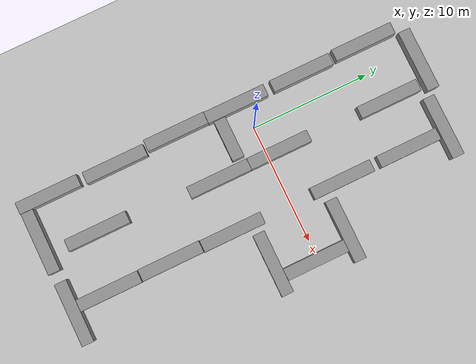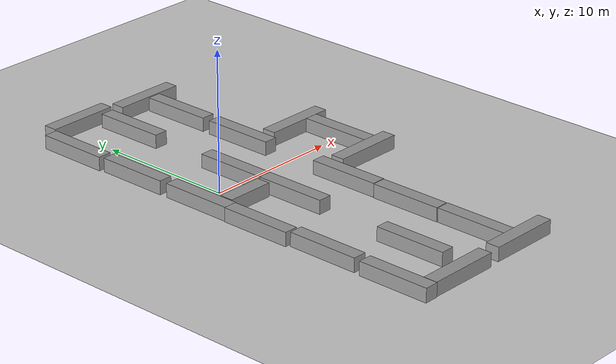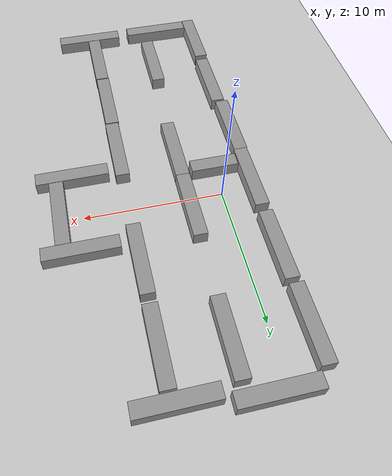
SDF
<sdf version="1.7">
 <world name="default">
  <light name="sun" type="directional">
   <pose>0 0 10 0 -0 0</pose>
   <diffuse>0.8 0.8 0.8 1</diffuse>
   <specular>0.2 0.2 0.2 1</specular>
   <attenuation>
    <range>1000</range>
    <constant>0.9</constant>
    <linear>0.01</linear>
    <quadratic>0.001</quadratic>
   </attenuation>
   <direction>-0.5 0.1 -0.9</direction>
   <spot><inner_angle>0</inner_angle><outer_angle>0</outer_angle><falloff>0</falloff></spot>
  </light>
  <model name="ground_plane">
   <static>1</static>
   <link name="link">
    <collision name="collision">
     <geometry><plane><normal>0 0 1</normal><size>100 100</size></plane></geometry>
     <surface>
      <contact><collide_bitmask>65535</collide_bitmask></contact>
      <friction><ode><mu>100</mu><mu2>50</mu2></ode></friction>
     </surface>
    </collision>
    <visual name="visual">
     <cast_shadows>0</cast_shadows>
     <geometry><plane><normal>0 0 1</normal><size>100 100</size></plane></geometry>
     <material>
      <script><uri>file://media/materials/scripts/gazebo.material</uri><name>Gazebo/Grey</name></script>
     </material>
    </visual>
   </link>
  </model>
  <gravity>0 0 -9.8</gravity>
  <magnetic_field>6e-06 2.3e-05 -4.2e-05</magnetic_field>
  <atmosphere type="adiabatic"/>
  <physics type="ode">
   <max_step_size>0.001</max_step_size>
   <real_time_factor>1</real_time_factor>
   <real_time_update_rate>1000</real_time_update_rate>
  </physics>
  <scene><ambient>0.4 0.4 0.4 1</ambient><background>0.7 0.7 0.7 1</background><shadows>1</shadows></scene>
  <spherical_coordinates>
   <surface_model>EARTH_WGS84</surface_model>
   <latitude_deg>0</latitude_deg>
   <longitude_deg>0</longitude_deg>
   <elevation>0</elevation>
   <heading_deg>0</heading_deg>
  </spherical_coordinates>
  <model name="unit_box">
   <pose>-2.243 -0.530766 0.497392 0.000997 0 2e-05</pose>
   <link name="link">
    <inertial>
     <mass>1</mass>
     <inertia>
      <ixx>0.166667</ixx>
      <ixy>0</ixy>
      <ixz>0</ixz>
      <iyy>0.166667</iyy>
      <iyz>0</iyz>
      <izz>0.166667</izz>
     </inertia>
    </inertial>
    <collision name="collision"><geometry><box><size>1 5.23153 1</size></box></geometry></collision>
    <visual name="visual">
     <geometry><box><size>1 5.23153 1</size></box></geometry>
     <material>
      <script><name>Gazebo/Grey</name><uri>file://media/materials/scripts/gazebo.material</uri></script>
     </material>
    </visual>
   </link>
  </model>
  <model name="unit_box_clone">
   <pose>2.53569 0.952664 0.497392 0.000997 0 2e-05</pose>
   <link name="link">
    <inertial>
     <mass>1</mass>
     <inertia>
      <ixx>0.166667</ixx>
      <ixy>0</ixy>
      <ixz>0</ixz>
      <iyy>0.166667</iyy>
      <iyz>0</iyz>
      <izz>0.166667</izz>
     </inertia>
    </inertial>
    <collision name="collision"><geometry><box><size>1 5.23153 1</size></box></geometry></collision>
    <visual name="visual">
     <geometry><box><size>1 5.23153 1</size></box></geometry>
     <material>
      <script><name>Gazebo/Grey</name><uri>file://media/materials/scripts/gazebo.material</uri></script>
     </material>
    </visual>
   </link>
  </model>
  <model name="unit_box_clone_0">
   <pose>-2.28916 -5.76675 0.497392 -0.000997 0 2.2e-05</pose>
   <link name="link">
    <inertial>
     <mass>1</mass>
     <inertia>
      <ixx>0.166667</ixx>
      <ixy>0</ixy>
      <ixz>0</ixz>
      <iyy>0.166667</iyy>
      <iyz>0</iyz>
      <izz>0.166667</izz>
     </inertia>
    </inertial>
    <collision name="collision"><geometry><box><size>1 5.23153 1</size></box></geometry></collision>
    <visual name="visual">
     <geometry><box><size>1 5.23153 1</size></box></geometry>
     <material>
      <script><name>Gazebo/Grey</name><uri>file://media/materials/scripts/gazebo.material</uri></script>
     </material>
    </visual>
   </link>
  </model>
  <model name="unit_box_clone_1">
   <pose>2.53869 -4.28294 0.497392 -0.000997 0 -2e-05</pose>
   <link name="link">
    <inertial>
     <mass>1</mass>
     <inertia>
      <ixx>0.166667</ixx>
      <ixy>0</ixy>
      <ixz>0</ixz>
      <iyy>0.166667</iyy>
      <iyz>0</iyz>
      <izz>0.166667</izz>
     </inertia>
    </inertial>
    <collision name="collision"><geometry><box><size>1 5.23153 1</size></box></geometry></collision>
    <visual name="visual">
     <geometry><box><size>1 5.23153 1</size></box></geometry>
     <material>
      <script><name>Gazebo/Grey</name><uri>file://media/materials/scripts/gazebo.material</uri></script>
     </material>
    </visual>
   </link>
  </model>
  <model name="unit_box_clone_2">
   <pose>6.76906 -5.14834 0.497392 0.000997 -0 -2e-05</pose>
   <link name="link">
    <inertial>
     <mass>1</mass>
     <inertia>
      <ixx>0.166667</ixx>
      <ixy>0</ixy>
      <ixz>0</ixz>
      <iyy>0.166667</iyy>
      <iyz>0</iyz>
      <izz>0.166667</izz>
     </inertia>
    </inertial>
    <collision name="collision"><geometry><box><size>1 5.23153 1</size></box></geometry></collision>
    <visual name="visual">
     <geometry><box><size>1 5.23153 1</size></box></geometry>
     <material>
      <script><name>Gazebo/Grey</name><uri>file://media/materials/scripts/gazebo.material</uri></script>
     </material>
    </visual>
   </link>
  </model>
  <model name="unit_box_clone_3">
   <pose>6.79657 4.38113 0.497392 0.000997 0 2e-05</pose>
   <link name="link">
    <inertial>
     <mass>1</mass>
     <inertia>
      <ixx>0.166667</ixx>
      <ixy>0</ixy>
      <ixz>0</ixz>
      <iyy>0.166667</iyy>
      <iyz>0</iyz>
      <izz>0.166667</izz>
     </inertia>
    </inertial>
    <collision name="collision"><geometry><box><size>1 5.23153 1</size></box></geometry></collision>
    <visual name="visual">
     <geometry><box><size>1 5.23153 1</size></box></geometry>
     <material>
      <script><name>Gazebo/Grey</name><uri>file://media/materials/scripts/gazebo.material</uri></script>
     </material>
    </visual>
   </link>
  </model>
  <model name="unit_box_clone_4">
   <pose>-2.26327 5.25607 0.497392 0.000997 -0 -2e-05</pose>
   <link name="link">
    <inertial>
     <mass>1</mass>
     <inertia>
      <ixx>0.166667</ixx>
      <ixy>0</ixy>
      <ixz>0</ixz>
      <iyy>0.166667</iyy>
      <iyz>0</iyz>
      <izz>0.166667</izz>
     </inertia>
    </inertial>
    <collision name="collision"><geometry><box><size>1 5.23153 1</size></box></geometry></collision>
    <visual name="visual">
     <geometry><box><size>1 5.23153 1</size></box></geometry>
     <material>
      <script><name>Gazebo/Grey</name><uri>file://media/materials/scripts/gazebo.material</uri></script>
     </material>
    </visual>
   </link>
  </model>
  <model name="unit_box_clone_5">
   <pose>-2.37542 10.8163 0.497392 0.000997 -0 -2e-05</pose>
   <link name="link">
    <inertial>
     <mass>1</mass>
     <inertia>
      <ixx>0.166667</ixx>
      <ixy>0</ixy>
      <ixz>0</ixz>
      <iyy>0.166667</iyy>
      <iyz>0</iyz>
      <izz>0.166667</izz>
     </inertia>
    </inertial>
    <collision name="collision"><geometry><box><size>1 5.23153 1</size></box></geometry></collision>
    <visual name="visual">
     <geometry><box><size>1 5.23153 1</size></box></geometry>
     <material>
      <script><name>Gazebo/Grey</name><uri>file://media/materials/scripts/gazebo.material</uri></script>
     </material>
    </visual>
   </link>
  </model>
  <model name="unit_box_clone_6">
   <pose>2.63756 10.5857 0.497392 -0.000997 0 -2e-05</pose>
   <link name="link">
    <inertial>
     <mass>1</mass>
     <inertia>
      <ixx>0.166667</ixx>
      <ixy>0</ixy>
      <ixz>0</ixz>
      <iyy>0.166667</iyy>
      <iyz>0</iyz>
      <izz>0.166667</izz>
     </inertia>
    </inertial>
    <collision name="collision"><geometry><box><size>1 5.23153 1</size></box></geometry></collision>
    <visual name="visual">
     <geometry><box><size>1 5.23153 1</size></box></geometry>
     <material>
      <script><name>Gazebo/Grey</name><uri>file://media/materials/scripts/gazebo.material</uri></script>
     </material>
    </visual>
   </link>
  </model>
  <model name="unit_box_clone_8">
   <pose>6.81127 10.2205 0.497392 -0.000997 0 -2e-05</pose>
   <link name="link">
    <inertial>
     <mass>1</mass>
     <inertia>
      <ixx>0.166667</ixx>
      <ixy>0</ixy>
      <ixz>0</ixz>
      <iyy>0.166667</iyy>
      <iyz>0</iyz>
      <izz>0.166667</izz>
     </inertia>
    </inertial>
    <collision name="collision"><geometry><box><size>1 5.23153 1</size></box></geometry></collision>
    <visual name="visual">
     <geometry><box><size>1 5.23153 1</size></box></geometry>
     <material>
      <script><name>Gazebo/Grey</name><uri>file://media/materials/scripts/gazebo.material</uri></script>
     </material>
    </visual>
   </link>
  </model>
  <model name="unit_box_clone_10">
   <pose>11.5473 -0.244966 0.497392 0.000997 -0 -1.1e-05</pose>
   <link name="link">
    <inertial>
     <mass>1</mass>
     <inertia>
      <ixx>0.166667</ixx>
      <ixy>0</ixy>
      <ixz>0</ixz>
      <iyy>0.166667</iyy>
      <iyz>0</iyz>
      <izz>0.166667</izz>
     </inertia>
    </inertial>
    <collision name="collision"><geometry><box><size>1 5.23153 1</size></box></geometry></collision>
    <visual name="visual">
     <geometry><box><size>1 5.23153 1</size></box></geometry>
     <material>
      <script><name>Gazebo/Grey</name><uri>file://media/materials/scripts/gazebo.material</uri></script>
     </material>
    </visual>
   </link>
  </model>
  <model name="unit_box_clone_13">
   <pose>6.71995 -10.4342 0.497392 -0.000997 0 -2e-05</pose>
   <link name="link">
    <inertial>
     <mass>1</mass>
     <inertia>
      <ixx>0.166667</ixx>
      <ixy>0</ixy>
      <ixz>0</ixz>
      <iyy>0.166667</iyy>
      <iyz>0</iyz>
      <izz>0.166667</izz>
     </inertia>
    </inertial>
    <collision name="collision"><geometry><box><size>1 5.23153 1</size></box></geometry></collision>
    <visual name="visual">
     <geometry><box><size>1 5.23153 1</size></box></geometry>
     <material>
      <script><name>Gazebo/Grey</name><uri>file://media/materials/scripts/gazebo.material</uri></script>
     </material>
    </visual>
   </link>
  </model>
  <model name="unit_box_clone_14">
   <pose>2.14431 -14.6162 0.497392 0.000997 -0 -2e-05</pose>
   <link name="link">
    <inertial>
     <mass>1</mass>
     <inertia>
      <ixx>0.166667</ixx>
      <ixy>0</ixy>
      <ixz>0</ixz>
      <iyy>0.166667</iyy>
      <iyz>0</iyz>
      <izz>0.166667</izz>
     </inertia>
    </inertial>
    <collision name="collision"><geometry><box><size>1 5.23153 1</size></box></geometry></collision>
    <visual name="visual">
     <geometry><box><size>1 5.23153 1</size></box></geometry>
     <material>
      <script><name>Gazebo/Grey</name><uri>file://media/materials/scripts/gazebo.material</uri></script>
     </material>
    </visual>
   </link>
  </model>
  <model name="unit_box_clone_15">
   <pose>-2.04357 -11.1707 0.497392 0.000997 -0 2.2e-05</pose>
   <link name="link">
    <inertial>
     <mass>1</mass>
     <inertia>
      <ixx>0.166667</ixx>
      <ixy>0</ixy>
      <ixz>0</ixz>
      <iyy>0.166667</iyy>
      <iyz>0</iyz>
      <izz>0.166667</izz>
     </inertia>
    </inertial>
    <collision name="collision"><geometry><box><size>1 5.23153 1</size></box></geometry></collision>
    <visual name="visual">
     <geometry><box><size>1 5.23153 1</size></box></geometry>
     <material>
      <script><name>Gazebo/Grey</name><uri>file://media/materials/scripts/gazebo.material</uri></script>
     </material>
    </visual>
   </link>
  </model>
  <model name="unit_box_clone_16">
   <pose>-2.13007 -16.8817 0.497392 -0.000997 -0 -2.2e-05</pose>
   <link name="link">
    <inertial>
     <mass>1</mass>
     <inertia>
      <ixx>0.166667</ixx>
      <ixy>0</ixy>
      <ixz>0</ixz>
      <iyy>0.166667</iyy>
      <iyz>0</iyz>
      <izz>0.166667</izz>
     </inertia>
    </inertial>
    <collision name="collision"><geometry><box><size>1 5.23153 1</size></box></geometry></collision>
    <visual name="visual">
     <geometry><box><size>1 5.23153 1</size></box></geometry>
     <material>
      <script><name>Gazebo/Grey</name><uri>file://media/materials/scripts/gazebo.material</uri></script>
     </material>
    </visual>
   </link>
  </model>
  <model name="unit_box_clone_17">
   <pose>6.74835 -15.7306 0.497392 0.000997 -0 1.9e-05</pose>
   <link name="link">
    <inertial>
     <mass>1</mass>
     <inertia>
      <ixx>0.166667</ixx>
      <ixy>0</ixy>
      <ixz>0</ixz>
      <iyy>0.166667</iyy>
      <iyz>0</iyz>
      <izz>0.166667</izz>
     </inertia>
    </inertial>
    <collision name="collision"><geometry><box><size>1 5.23153 1</size></box></geometry></collision>
    <visual name="visual">
     <geometry><box><size>1 5.23153 1</size></box></geometry>
     <material>
      <script><name>Gazebo/Grey</name><uri>file://media/materials/scripts/gazebo.material</uri></script>
     </material>
    </visual>
   </link>
  </model>
  <model name="unit_box_clone_14_clone">
   <pose>1.00486 -18.9491 0.497392 -0.000997 -0 -1.57082</pose>
   <link name="link">
    <inertial>
     <mass>1</mass>
     <inertia>
      <ixx>0.166667</ixx>
      <ixy>0</ixy>
      <ixz>0</ixz>
      <iyy>0.166667</iyy>
      <iyz>0</iyz>
      <izz>0.166667</izz>
     </inertia>
    </inertial>
    <collision name="collision"><geometry><box><size>1 5.23153 1</size></box></geometry></collision>
    <visual name="visual">
     <geometry><box><size>1 5.23153 1</size></box></geometry>
     <material>
      <script><name>Gazebo/Grey</name><uri>file://media/materials/scripts/gazebo.material</uri></script>
     </material>
    </visual>
   </link>
  </model>
  <model name="unit_box_clone_14_clone_clone">
   <pose>7.10162 -18.8491 0.497392 -0.000997 -0 -1.57077</pose>
   <link name="link">
    <inertial>
     <mass>1</mass>
     <inertia>
      <ixx>0.166667</ixx>
      <ixy>0</ixy>
      <ixz>0</ixz>
      <iyy>0.166667</iyy>
      <iyz>0</iyz>
      <izz>0.166667</izz>
     </inertia>
    </inertial>
    <collision name="collision"><geometry><box><size>1 5.23153 1</size></box></geometry></collision>
    <visual name="visual">
     <geometry><box><size>1 5.23153 1</size></box></geometry>
     <material>
      <script><name>Gazebo/Grey</name><uri>file://media/materials/scripts/gazebo.material</uri></script>
     </material>
    </visual>
   </link>
  </model>
  <model name="unit_box_clone_14_clone_clone_0">
   <pose>0.821062 14.1331 0.497392 -0.000997 -0 -1.57077</pose>
   <link name="link">
    <inertial>
     <mass>1</mass>
     <inertia>
      <ixx>0.166667</ixx>
      <ixy>0</ixy>
      <ixz>0</ixz>
      <iyy>0.166667</iyy>
      <iyz>0</iyz>
      <izz>0.166667</izz>
     </inertia>
    </inertial>
    <collision name="collision"><geometry><box><size>1 5.23153 1</size></box></geometry></collision>
    <visual name="visual">
     <geometry><box><size>1 5.23153 1</size></box></geometry>
     <material>
      <script><name>Gazebo/Grey</name><uri>file://media/materials/scripts/gazebo.material</uri></script>
     </material>
    </visual>
   </link>
  </model>
  <model name="unit_box_clone_14_clone_clone_1">
   <pose>6.48184 13.4523 0.497392 -0.000997 -0 -1.57082</pose>
   <link name="link">
    <inertial>
     <mass>1</mass>
     <inertia>
      <ixx>0.166667</ixx>
      <ixy>0</ixy>
      <ixz>0</ixz>
      <iyy>0.166667</iyy>
      <iyz>0</iyz>
      <izz>0.166667</izz>
     </inertia>
    </inertial>
    <collision name="collision"><geometry><box><size>1 5.23153 1</size></box></geometry></collision>
    <visual name="visual">
     <geometry><box><size>1 5.23153 1</size></box></geometry>
     <material>
      <script><name>Gazebo/Grey</name><uri>file://media/materials/scripts/gazebo.material</uri></script>
     </material>
    </visual>
   </link>
  </model>
  <model name="unit_box_clone_14_clone_clone_2">
   <pose>10.4331 2.8754 0.5 0 1e-06 -1.57078</pose>
   <link name="link">
    <inertial>
     <mass>1</mass>
     <inertia>
      <ixx>0.166667</ixx>
      <ixy>0</ixy>
      <ixz>0</ixz>
      <iyy>0.166667</iyy>
      <iyz>0</iyz>
      <izz>0.166667</izz>
     </inertia>
    </inertial>
    <collision name="collision"><geometry><box><size>1 5.23153 1</size></box></geometry></collision>
    <visual name="visual">
     <geometry><box><size>1 5.23153 1</size></box></geometry>
     <material>
      <script><name>Gazebo/Grey</name><uri>file://media/materials/scripts/gazebo.material</uri></script>
     </material>
    </visual>
   </link>
  </model>
  <model name="unit_box_clone_14_clone_clone_3">
   <pose>10.346 -3.36658 0.498854 4e-06 1e-06 -1.57123</pose>
   <link name="link">
    <inertial>
     <mass>1</mass>
     <inertia>
      <ixx>0.166667</ixx>
      <ixy>0</ixy>
      <ixz>0</ixz>
      <iyy>0.166667</iyy>
      <iyz>0</iyz>
      <izz>0.166667</izz>
     </inertia>
    </inertial>
    <collision name="collision"><geometry><box><size>1 5.23153 1</size></box></geometry></collision>
    <visual name="visual">
     <geometry><box><size>1 5.23153 1</size></box></geometry>
     <material>
      <script><name>Gazebo/Grey</name><uri>file://media/materials/scripts/gazebo.material</uri></script>
     </material>
    </visual>
   </link>
  </model>
  <model name="unit_box_clone_14_clone_clone_4">
   <pose>0.053406 -2.23923 0.499995 1e-06 6e-06 -1.57082</pose>
   <link name="link">
    <inertial>
     <mass>1</mass>
     <inertia>
      <ixx>0.166667</ixx>
      <ixy>0</ixy>
      <ixz>0</ixz>
      <iyy>0.166667</iyy>
      <iyz>0</iyz>
      <izz>0.166667</izz>
     </inertia>
    </inertial>
    <collision name="collision"><geometry><box><size>1 3.45986 1</size></box></geometry></collision>
    <visual name="visual">
     <geometry><box><size>1 3.45986 1</size></box></geometry>
     <material>
      <script><name>Gazebo/Grey</name><uri>file://media/materials/scripts/gazebo.material</uri></script>
     </material>
    </visual>
   </link>
  </model>
 </world>
</sdf>
